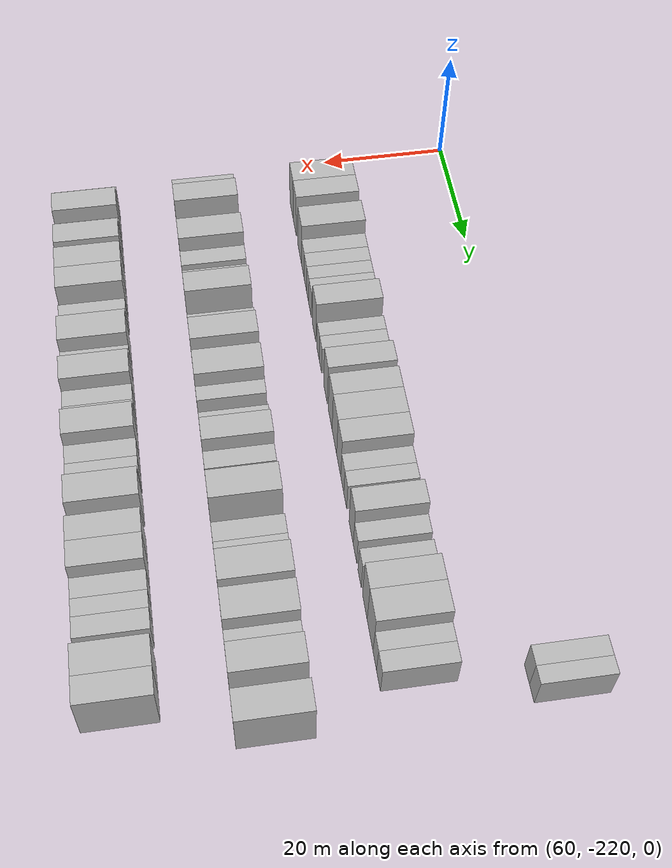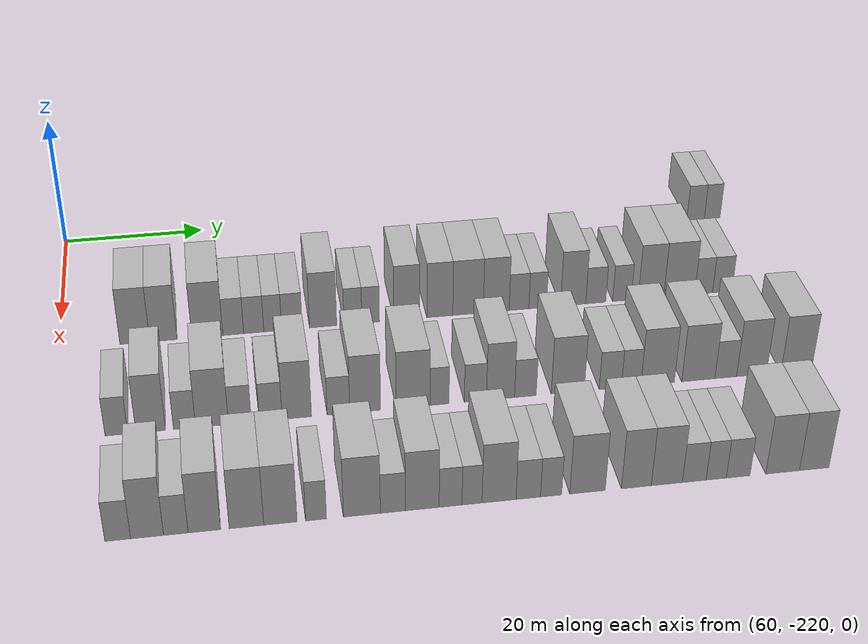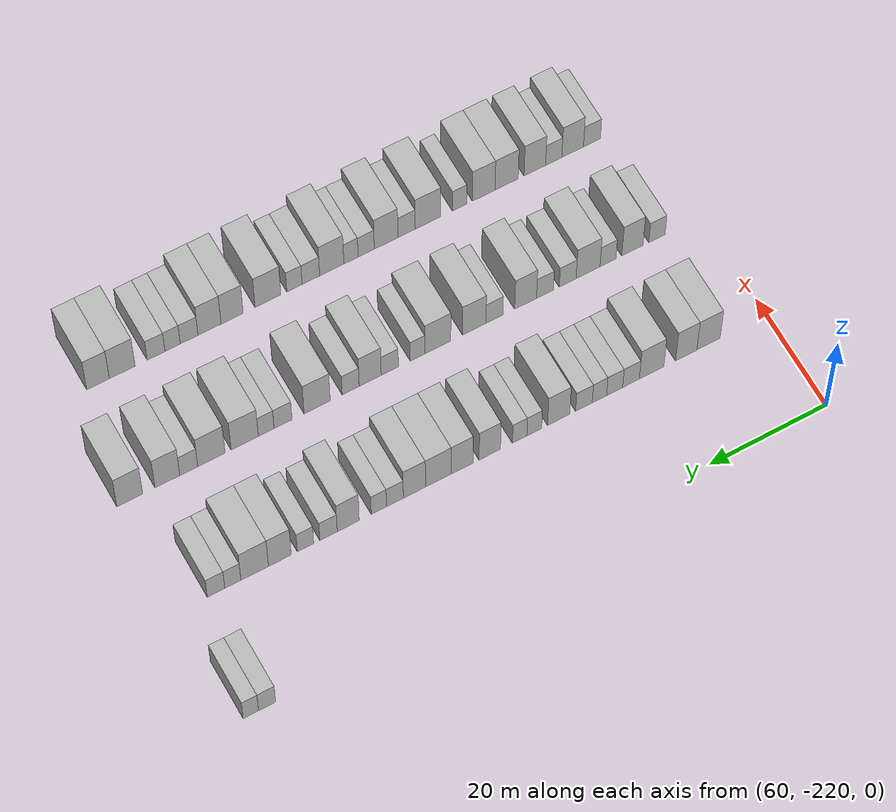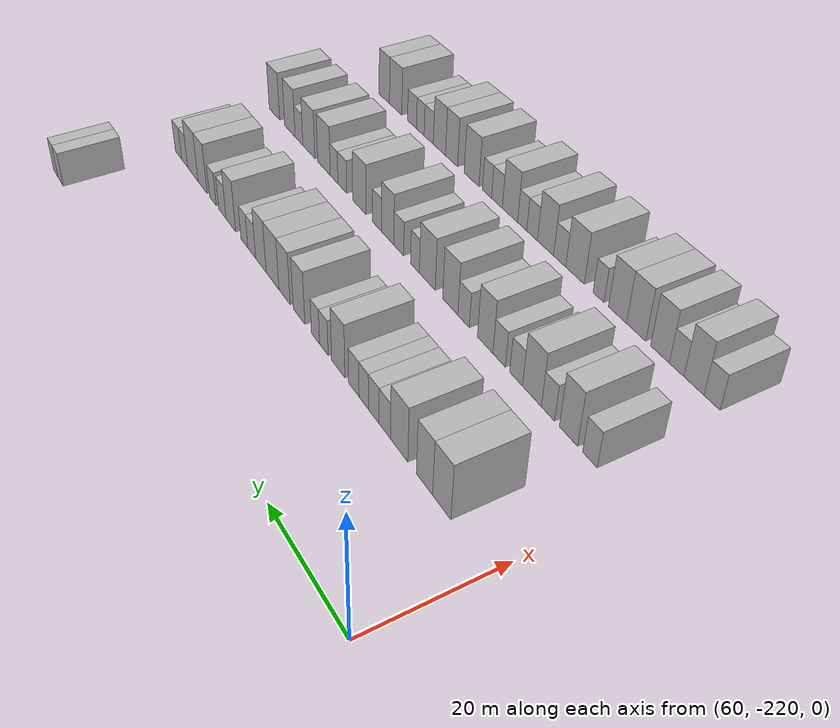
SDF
<sdf version="1.6">
 <world name="default">
  <model name="building_408">
   <static>1</static>
   <pose>63.0000 -125.8881 0 0.000000 0.000000 0.000000</pose>
   <link name="link">
    <pose>0 0 3.00 0 0 0</pose>
    <collision name="collision"><geometry><box><size>10.0000 2.7410 6.0000</size></box></geometry></collision>
    <visual name="visual">
     <cast_shadows>0</cast_shadows>
     <geometry><box><size>10.0000 2.7410 6.0000</size></box></geometry>
     <material>
      <script>
       <uri>model://HANNAS_wall/materials/scripts</uri>
       <uri>model://HANNAS_wall/materials/textures</uri>
       <name>vrc/HANNAS_wall</name>
      </script>
     </material>
    </visual>
   </link>
  </model>
  <model name="building_409">
   <static>1</static>
   <pose>63.0000 -123.2886 0 0.000000 0.000000 0.000000</pose>
   <link name="link">
    <pose>0 0 3.00 0 0 0</pose>
    <collision name="collision"><geometry><box><size>10.0000 2.4580 6.0000</size></box></geometry></collision>
    <visual name="visual">
     <cast_shadows>0</cast_shadows>
     <geometry><box><size>10.0000 2.4580 6.0000</size></box></geometry>
     <material>
      <script>
       <uri>model://HANNAS_wall/materials/scripts</uri>
       <uri>model://HANNAS_wall/materials/textures</uri>
       <name>vrc/HANNAS_wall</name>
      </script>
     </material>
    </visual>
   </link>
  </model>
  <model name="building_556">
   <static>1</static>
   <pose>82.0000 -209.9341 0 0.000000 0.000000 0.000000</pose>
   <link name="link">
    <pose>0 0 4.50 0 0 0</pose>
    <collision name="collision"><geometry><box><size>10.0000 3.9889 9.0000</size></box></geometry></collision>
    <visual name="visual">
     <cast_shadows>0</cast_shadows>
     <geometry><box><size>10.0000 3.9889 9.0000</size></box></geometry>
     <material>
      <script>
       <uri>model://HANNAS_wall/materials/scripts</uri>
       <uri>model://HANNAS_wall/materials/textures</uri>
       <name>vrc/HANNAS_wall</name>
      </script>
     </material>
    </visual>
   </link>
  </model>
  <model name="building_557">
   <static>1</static>
   <pose>82.0000 -206.1046 0 0.000000 0.000000 0.000000</pose>
   <link name="link">
    <pose>0 0 4.50 0 0 0</pose>
    <collision name="collision"><geometry><box><size>10.0000 3.6702 9.0000</size></box></geometry></collision>
    <visual name="visual">
     <cast_shadows>0</cast_shadows>
     <geometry><box><size>10.0000 3.6702 9.0000</size></box></geometry>
     <material>
      <script>
       <uri>model://HANNAS_wall/materials/scripts</uri>
       <uri>model://HANNAS_wall/materials/textures</uri>
       <name>vrc/HANNAS_wall</name>
      </script>
     </material>
    </visual>
   </link>
  </model>
  <model name="building_558">
   <static>1</static>
   <pose>82.0000 -200.1726 0 0.000000 0.000000 0.000000</pose>
   <link name="link">
    <pose>0 0 4.50 0 0 0</pose>
    <collision name="collision"><geometry><box><size>10.0000 4.1939 9.0000</size></box></geometry></collision>
    <visual name="visual">
     <cast_shadows>0</cast_shadows>
     <geometry><box><size>10.0000 4.1939 9.0000</size></box></geometry>
     <material>
      <script>
       <uri>model://HANNAS_wall/materials/scripts</uri>
       <uri>model://HANNAS_wall/materials/textures</uri>
       <name>vrc/HANNAS_wall</name>
      </script>
     </material>
    </visual>
   </link>
  </model>
  <model name="building_559">
   <static>1</static>
   <pose>82.0000 -196.6565 0 0.000000 0.000000 0.000000</pose>
   <link name="link">
    <pose>0 0 3.00 0 0 0</pose>
    <collision name="collision"><geometry><box><size>10.0000 2.8383 6.0000</size></box></geometry></collision>
    <visual name="visual">
     <cast_shadows>0</cast_shadows>
     <geometry><box><size>10.0000 2.8383 6.0000</size></box></geometry>
     <material>
      <script>
       <uri>model://HANNAS_wall/materials/scripts</uri>
       <uri>model://HANNAS_wall/materials/textures</uri>
       <name>vrc/HANNAS_wall</name>
      </script>
     </material>
    </visual>
   </link>
  </model>
  <model name="building_560">
   <static>1</static>
   <pose>82.0000 -193.8672 0 0.000000 0.000000 0.000000</pose>
   <link name="link">
    <pose>0 0 3.00 0 0 0</pose>
    <collision name="collision"><geometry><box><size>10.0000 2.7402 6.0000</size></box></geometry></collision>
    <visual name="visual">
     <cast_shadows>0</cast_shadows>
     <geometry><box><size>10.0000 2.7402 6.0000</size></box></geometry>
     <material>
      <script>
       <uri>model://HANNAS_wall/materials/scripts</uri>
       <uri>model://HANNAS_wall/materials/textures</uri>
       <name>vrc/HANNAS_wall</name>
      </script>
     </material>
    </visual>
   </link>
  </model>
  <model name="building_561">
   <static>1</static>
   <pose>82.0000 -191.2792 0 0.000000 0.000000 0.000000</pose>
   <link name="link">
    <pose>0 0 3.00 0 0 0</pose>
    <collision name="collision"><geometry><box><size>10.0000 2.4358 6.0000</size></box></geometry></collision>
    <visual name="visual">
     <cast_shadows>0</cast_shadows>
     <geometry><box><size>10.0000 2.4358 6.0000</size></box></geometry>
     <material>
      <script>
       <uri>model://HANNAS_wall/materials/scripts</uri>
       <uri>model://HANNAS_wall/materials/textures</uri>
       <name>vrc/HANNAS_wall</name>
      </script>
     </material>
    </visual>
   </link>
  </model>
  <model name="building_562">
   <static>1</static>
   <pose>82.0000 -188.6510 0 0.000000 0.000000 0.000000</pose>
   <link name="link">
    <pose>0 0 3.00 0 0 0</pose>
    <collision name="collision"><geometry><box><size>10.0000 2.8208 6.0000</size></box></geometry></collision>
    <visual name="visual">
     <cast_shadows>0</cast_shadows>
     <geometry><box><size>10.0000 2.8208 6.0000</size></box></geometry>
     <material>
      <script>
       <uri>model://HANNAS_wall/materials/scripts</uri>
       <uri>model://HANNAS_wall/materials/textures</uri>
       <name>vrc/HANNAS_wall</name>
      </script>
     </material>
    </visual>
   </link>
  </model>
  <model name="building_563">
   <static>1</static>
   <pose>82.0000 -184.3695 0 0.000000 0.000000 0.000000</pose>
   <link name="link">
    <pose>0 0 4.50 0 0 0</pose>
    <collision name="collision"><geometry><box><size>10.0000 3.7422 9.0000</size></box></geometry></collision>
    <visual name="visual">
     <cast_shadows>0</cast_shadows>
     <geometry><box><size>10.0000 3.7422 9.0000</size></box></geometry>
     <material>
      <script>
       <uri>model://HANNAS_wall/materials/scripts</uri>
       <uri>model://HANNAS_wall/materials/textures</uri>
       <name>vrc/HANNAS_wall</name>
      </script>
     </material>
    </visual>
   </link>
  </model>
  <model name="building_564">
   <static>1</static>
   <pose>82.0000 -180.2555 0 0.000000 0.000000 0.000000</pose>
   <link name="link">
    <pose>0 0 3.00 0 0 0</pose>
    <collision name="collision"><geometry><box><size>10.0000 2.4857 6.0000</size></box></geometry></collision>
    <visual name="visual">
     <cast_shadows>0</cast_shadows>
     <geometry><box><size>10.0000 2.4857 6.0000</size></box></geometry>
     <material>
      <script>
       <uri>model://HANNAS_wall/materials/scripts</uri>
       <uri>model://HANNAS_wall/materials/textures</uri>
       <name>vrc/HANNAS_wall</name>
      </script>
     </material>
    </visual>
   </link>
  </model>
  <model name="building_565">
   <static>1</static>
   <pose>82.0000 -177.7943 0 0.000000 0.000000 0.000000</pose>
   <link name="link">
    <pose>0 0 3.00 0 0 0</pose>
    <collision name="collision"><geometry><box><size>10.0000 2.4367 6.0000</size></box></geometry></collision>
    <visual name="visual">
     <cast_shadows>0</cast_shadows>
     <geometry><box><size>10.0000 2.4367 6.0000</size></box></geometry>
     <material>
      <script>
       <uri>model://HANNAS_wall/materials/scripts</uri>
       <uri>model://HANNAS_wall/materials/textures</uri>
       <name>vrc/HANNAS_wall</name>
      </script>
     </material>
    </visual>
   </link>
  </model>
  <model name="building_566">
   <static>1</static>
   <pose>82.0000 -172.7756 0 0.000000 0.000000 0.000000</pose>
   <link name="link">
    <pose>0 0 4.50 0 0 0</pose>
    <collision name="collision"><geometry><box><size>10.0000 3.6007 9.0000</size></box></geometry></collision>
    <visual name="visual">
     <cast_shadows>0</cast_shadows>
     <geometry><box><size>10.0000 3.6007 9.0000</size></box></geometry>
     <material>
      <script>
       <uri>model://HANNAS_wall/materials/scripts</uri>
       <uri>model://HANNAS_wall/materials/textures</uri>
       <name>vrc/HANNAS_wall</name>
      </script>
     </material>
    </visual>
   </link>
  </model>
  <model name="building_567">
   <static>1</static>
   <pose>82.0000 -168.1535 0 0.000000 0.000000 0.000000</pose>
   <link name="link">
    <pose>0 0 4.50 0 0 0</pose>
    <collision name="collision"><geometry><box><size>10.0000 3.6436 9.0000</size></box></geometry></collision>
    <visual name="visual">
     <cast_shadows>0</cast_shadows>
     <geometry><box><size>10.0000 3.6436 9.0000</size></box></geometry>
     <material>
      <script>
       <uri>model://HANNAS_wall/materials/scripts</uri>
       <uri>model://HANNAS_wall/materials/textures</uri>
       <name>vrc/HANNAS_wall</name>
      </script>
     </material>
    </visual>
   </link>
  </model>
  <model name="building_568">
   <static>1</static>
   <pose>82.0000 -164.1876 0 0.000000 0.000000 0.000000</pose>
   <link name="link">
    <pose>0 0 4.50 0 0 0</pose>
    <collision name="collision"><geometry><box><size>10.0000 4.2883 9.0000</size></box></geometry></collision>
    <visual name="visual">
     <cast_shadows>0</cast_shadows>
     <geometry><box><size>10.0000 4.2883 9.0000</size></box></geometry>
     <material>
      <script>
       <uri>model://HANNAS_wall/materials/scripts</uri>
       <uri>model://HANNAS_wall/materials/textures</uri>
       <name>vrc/HANNAS_wall</name>
      </script>
     </material>
    </visual>
   </link>
  </model>
  <model name="building_569">
   <static>1</static>
   <pose>82.0000 -160.2117 0 0.000000 0.000000 0.000000</pose>
   <link name="link">
    <pose>0 0 4.50 0 0 0</pose>
    <collision name="collision"><geometry><box><size>10.0000 3.6635 9.0000</size></box></geometry></collision>
    <visual name="visual">
     <cast_shadows>0</cast_shadows>
     <geometry><box><size>10.0000 3.6635 9.0000</size></box></geometry>
     <material>
      <script>
       <uri>model://HANNAS_wall/materials/scripts</uri>
       <uri>model://HANNAS_wall/materials/textures</uri>
       <name>vrc/HANNAS_wall</name>
      </script>
     </material>
    </visual>
   </link>
  </model>
  <model name="building_570">
   <static>1</static>
   <pose>82.0000 -156.9840 0 0.000000 0.000000 0.000000</pose>
   <link name="link">
    <pose>0 0 3.00 0 0 0</pose>
    <collision name="collision"><geometry><box><size>10.0000 2.7917 6.0000</size></box></geometry></collision>
    <visual name="visual">
     <cast_shadows>0</cast_shadows>
     <geometry><box><size>10.0000 2.7917 6.0000</size></box></geometry>
     <material>
      <script>
       <uri>model://HANNAS_wall/materials/scripts</uri>
       <uri>model://HANNAS_wall/materials/textures</uri>
       <name>vrc/HANNAS_wall</name>
      </script>
     </material>
    </visual>
   </link>
  </model>
  <model name="building_571">
   <static>1</static>
   <pose>82.0000 -154.3357 0 0.000000 0.000000 0.000000</pose>
   <link name="link">
    <pose>0 0 3.00 0 0 0</pose>
    <collision name="collision"><geometry><box><size>10.0000 2.5050 6.0000</size></box></geometry></collision>
    <visual name="visual">
     <cast_shadows>0</cast_shadows>
     <geometry><box><size>10.0000 2.5050 6.0000</size></box></geometry>
     <material>
      <script>
       <uri>model://HANNAS_wall/materials/scripts</uri>
       <uri>model://HANNAS_wall/materials/textures</uri>
       <name>vrc/HANNAS_wall</name>
      </script>
     </material>
    </visual>
   </link>
  </model>
  <model name="building_572">
   <static>1</static>
   <pose>82.0000 -149.2749 0 0.000000 0.000000 0.000000</pose>
   <link name="link">
    <pose>0 0 4.50 0 0 0</pose>
    <collision name="collision"><geometry><box><size>10.0000 3.6166 9.0000</size></box></geometry></collision>
    <visual name="visual">
     <cast_shadows>0</cast_shadows>
     <geometry><box><size>10.0000 3.6166 9.0000</size></box></geometry>
     <material>
      <script>
       <uri>model://HANNAS_wall/materials/scripts</uri>
       <uri>model://HANNAS_wall/materials/textures</uri>
       <name>vrc/HANNAS_wall</name>
      </script>
     </material>
    </visual>
   </link>
  </model>
  <model name="building_573">
   <static>1</static>
   <pose>82.0000 -146.0316 0 0.000000 0.000000 0.000000</pose>
   <link name="link">
    <pose>0 0 3.00 0 0 0</pose>
    <collision name="collision"><geometry><box><size>10.0000 2.8700 6.0000</size></box></geometry></collision>
    <visual name="visual">
     <cast_shadows>0</cast_shadows>
     <geometry><box><size>10.0000 2.8700 6.0000</size></box></geometry>
     <material>
      <script>
       <uri>model://HANNAS_wall/materials/scripts</uri>
       <uri>model://HANNAS_wall/materials/textures</uri>
       <name>vrc/HANNAS_wall</name>
      </script>
     </material>
    </visual>
   </link>
  </model>
  <model name="building_574">
   <static>1</static>
   <pose>82.0000 -142.2575 0 0.000000 0.000000 0.000000</pose>
   <link name="link">
    <pose>0 0 3.00 0 0 0</pose>
    <collision name="collision"><geometry><box><size>10.0000 2.6781 6.0000</size></box></geometry></collision>
    <visual name="visual">
     <cast_shadows>0</cast_shadows>
     <geometry><box><size>10.0000 2.6781 6.0000</size></box></geometry>
     <material>
      <script>
       <uri>model://HANNAS_wall/materials/scripts</uri>
       <uri>model://HANNAS_wall/materials/textures</uri>
       <name>vrc/HANNAS_wall</name>
      </script>
     </material>
    </visual>
   </link>
  </model>
  <model name="building_575">
   <static>1</static>
   <pose>82.0000 -138.0590 0 0.000000 0.000000 0.000000</pose>
   <link name="link">
    <pose>0 0 4.50 0 0 0</pose>
    <collision name="collision"><geometry><box><size>10.0000 3.7189 9.0000</size></box></geometry></collision>
    <visual name="visual">
     <cast_shadows>0</cast_shadows>
     <geometry><box><size>10.0000 3.7189 9.0000</size></box></geometry>
     <material>
      <script>
       <uri>model://HANNAS_wall/materials/scripts</uri>
       <uri>model://HANNAS_wall/materials/textures</uri>
       <name>vrc/HANNAS_wall</name>
      </script>
     </material>
    </visual>
   </link>
  </model>
  <model name="building_576">
   <static>1</static>
   <pose>82.0000 -133.9560 0 0.000000 0.000000 0.000000</pose>
   <link name="link">
    <pose>0 0 4.50 0 0 0</pose>
    <collision name="collision"><geometry><box><size>10.0000 4.4872 9.0000</size></box></geometry></collision>
    <visual name="visual">
     <cast_shadows>0</cast_shadows>
     <geometry><box><size>10.0000 4.4872 9.0000</size></box></geometry>
     <material>
      <script>
       <uri>model://HANNAS_wall/materials/scripts</uri>
       <uri>model://HANNAS_wall/materials/textures</uri>
       <name>vrc/HANNAS_wall</name>
      </script>
     </material>
    </visual>
   </link>
  </model>
  <model name="building_577">
   <static>1</static>
   <pose>82.0000 -130.4039 0 0.000000 0.000000 0.000000</pose>
   <link name="link">
    <pose>0 0 3.00 0 0 0</pose>
    <collision name="collision"><geometry><box><size>10.0000 2.6171 6.0000</size></box></geometry></collision>
    <visual name="visual">
     <cast_shadows>0</cast_shadows>
     <geometry><box><size>10.0000 2.6171 6.0000</size></box></geometry>
     <material>
      <script>
       <uri>model://HANNAS_wall/materials/scripts</uri>
       <uri>model://HANNAS_wall/materials/textures</uri>
       <name>vrc/HANNAS_wall</name>
      </script>
     </material>
    </visual>
   </link>
  </model>
  <model name="building_578">
   <static>1</static>
   <pose>82.0000 -127.6785 0 0.000000 0.000000 0.000000</pose>
   <link name="link">
    <pose>0 0 3.00 0 0 0</pose>
    <collision name="collision"><geometry><box><size>10.0000 2.8337 6.0000</size></box></geometry></collision>
    <visual name="visual">
     <cast_shadows>0</cast_shadows>
     <geometry><box><size>10.0000 2.8337 6.0000</size></box></geometry>
     <material>
      <script>
       <uri>model://HANNAS_wall/materials/scripts</uri>
       <uri>model://HANNAS_wall/materials/textures</uri>
       <name>vrc/HANNAS_wall</name>
      </script>
     </material>
    </visual>
   </link>
  </model>
  <model name="building_731">
   <static>1</static>
   <pose>101.0000 -212.2481 0 0.000000 0.000000 0.000000</pose>
   <link name="link">
    <pose>0 0 3.00 0 0 0</pose>
    <collision name="collision"><geometry><box><size>10.0000 2.8346 6.0000</size></box></geometry></collision>
    <visual name="visual">
     <cast_shadows>0</cast_shadows>
     <geometry><box><size>10.0000 2.8346 6.0000</size></box></geometry>
     <material>
      <script>
       <uri>model://HANNAS_wall/materials/scripts</uri>
       <uri>model://HANNAS_wall/materials/textures</uri>
       <name>vrc/HANNAS_wall</name>
      </script>
     </material>
    </visual>
   </link>
  </model>
  <model name="building_732">
   <static>1</static>
   <pose>101.0000 -207.9879 0 0.000000 0.000000 0.000000</pose>
   <link name="link">
    <pose>0 0 4.50 0 0 0</pose>
    <collision name="collision"><geometry><box><size>10.0000 3.6858 9.0000</size></box></geometry></collision>
    <visual name="visual">
     <cast_shadows>0</cast_shadows>
     <geometry><box><size>10.0000 3.6858 9.0000</size></box></geometry>
     <material>
      <script>
       <uri>model://HANNAS_wall/materials/scripts</uri>
       <uri>model://HANNAS_wall/materials/textures</uri>
       <name>vrc/HANNAS_wall</name>
      </script>
     </material>
    </visual>
   </link>
  </model>
  <model name="building_733">
   <static>1</static>
   <pose>101.0000 -203.7657 0 0.000000 0.000000 0.000000</pose>
   <link name="link">
    <pose>0 0 3.00 0 0 0</pose>
    <collision name="collision"><geometry><box><size>10.0000 2.7587 6.0000</size></box></geometry></collision>
    <visual name="visual">
     <cast_shadows>0</cast_shadows>
     <geometry><box><size>10.0000 2.7587 6.0000</size></box></geometry>
     <material>
      <script>
       <uri>model://HANNAS_wall/materials/scripts</uri>
       <uri>model://HANNAS_wall/materials/textures</uri>
       <name>vrc/HANNAS_wall</name>
      </script>
     </material>
    </visual>
   </link>
  </model>
  <model name="building_734">
   <static>1</static>
   <pose>101.0000 -200.3200 0 0.000000 0.000000 0.000000</pose>
   <link name="link">
    <pose>0 0 4.50 0 0 0</pose>
    <collision name="collision"><geometry><box><size>10.0000 4.1327 9.0000</size></box></geometry></collision>
    <visual name="visual">
     <cast_shadows>0</cast_shadows>
     <geometry><box><size>10.0000 4.1327 9.0000</size></box></geometry>
     <material>
      <script>
       <uri>model://HANNAS_wall/materials/scripts</uri>
       <uri>model://HANNAS_wall/materials/textures</uri>
       <name>vrc/HANNAS_wall</name>
      </script>
     </material>
    </visual>
   </link>
  </model>
  <model name="building_735">
   <static>1</static>
   <pose>101.0000 -196.8063 0 0.000000 0.000000 0.000000</pose>
   <link name="link">
    <pose>0 0 3.00 0 0 0</pose>
    <collision name="collision"><geometry><box><size>10.0000 2.8948 6.0000</size></box></geometry></collision>
    <visual name="visual">
     <cast_shadows>0</cast_shadows>
     <geometry><box><size>10.0000 2.8948 6.0000</size></box></geometry>
     <material>
      <script>
       <uri>model://HANNAS_wall/materials/scripts</uri>
       <uri>model://HANNAS_wall/materials/textures</uri>
       <name>vrc/HANNAS_wall</name>
      </script>
     </material>
    </visual>
   </link>
  </model>
  <model name="building_736">
   <static>1</static>
   <pose>101.0000 -192.9142 0 0.000000 0.000000 0.000000</pose>
   <link name="link">
    <pose>0 0 3.00 0 0 0</pose>
    <collision name="collision"><geometry><box><size>10.0000 2.8894 6.0000</size></box></geometry></collision>
    <visual name="visual">
     <cast_shadows>0</cast_shadows>
     <geometry><box><size>10.0000 2.8894 6.0000</size></box></geometry>
     <material>
      <script>
       <uri>model://HANNAS_wall/materials/scripts</uri>
       <uri>model://HANNAS_wall/materials/textures</uri>
       <name>vrc/HANNAS_wall</name>
      </script>
     </material>
    </visual>
   </link>
  </model>
  <model name="building_737">
   <static>1</static>
   <pose>101.0000 -189.5976 0 0.000000 0.000000 0.000000</pose>
   <link name="link">
    <pose>0 0 4.50 0 0 0</pose>
    <collision name="collision"><geometry><box><size>10.0000 3.7437 9.0000</size></box></geometry></collision>
    <visual name="visual">
     <cast_shadows>0</cast_shadows>
     <geometry><box><size>10.0000 3.7437 9.0000</size></box></geometry>
     <material>
      <script>
       <uri>model://HANNAS_wall/materials/scripts</uri>
       <uri>model://HANNAS_wall/materials/textures</uri>
       <name>vrc/HANNAS_wall</name>
      </script>
     </material>
    </visual>
   </link>
  </model>
  <model name="building_738">
   <static>1</static>
   <pose>101.0000 -184.2768 0 0.000000 0.000000 0.000000</pose>
   <link name="link">
    <pose>0 0 3.00 0 0 0</pose>
    <collision name="collision"><geometry><box><size>10.0000 2.8981 6.0000</size></box></geometry></collision>
    <visual name="visual">
     <cast_shadows>0</cast_shadows>
     <geometry><box><size>10.0000 2.8981 6.0000</size></box></geometry>
     <material>
      <script>
       <uri>model://HANNAS_wall/materials/scripts</uri>
       <uri>model://HANNAS_wall/materials/textures</uri>
       <name>vrc/HANNAS_wall</name>
      </script>
     </material>
    </visual>
   </link>
  </model>
  <model name="building_739">
   <static>1</static>
   <pose>101.0000 -180.8423 0 0.000000 0.000000 0.000000</pose>
   <link name="link">
    <pose>0 0 4.50 0 0 0</pose>
    <collision name="collision"><geometry><box><size>10.0000 3.9709 9.0000</size></box></geometry></collision>
    <visual name="visual">
     <cast_shadows>0</cast_shadows>
     <geometry><box><size>10.0000 3.9709 9.0000</size></box></geometry>
     <material>
      <script>
       <uri>model://HANNAS_wall/materials/scripts</uri>
       <uri>model://HANNAS_wall/materials/textures</uri>
       <name>vrc/HANNAS_wall</name>
      </script>
     </material>
    </visual>
   </link>
  </model>
  <model name="building_740">
   <static>1</static>
   <pose>101.0000 -174.6689 0 0.000000 0.000000 0.000000</pose>
   <link name="link">
    <pose>0 0 4.50 0 0 0</pose>
    <collision name="collision"><geometry><box><size>10.0000 4.3758 9.0000</size></box></geometry></collision>
    <visual name="visual">
     <cast_shadows>0</cast_shadows>
     <geometry><box><size>10.0000 4.3758 9.0000</size></box></geometry>
     <material>
      <script>
       <uri>model://HANNAS_wall/materials/scripts</uri>
       <uri>model://HANNAS_wall/materials/textures</uri>
       <name>vrc/HANNAS_wall</name>
      </script>
     </material>
    </visual>
   </link>
  </model>
  <model name="building_741">
   <static>1</static>
   <pose>101.0000 -171.2430 0 0.000000 0.000000 0.000000</pose>
   <link name="link">
    <pose>0 0 3.00 0 0 0</pose>
    <collision name="collision"><geometry><box><size>10.0000 2.4761 6.0000</size></box></geometry></collision>
    <visual name="visual">
     <cast_shadows>0</cast_shadows>
     <geometry><box><size>10.0000 2.4761 6.0000</size></box></geometry>
     <material>
      <script>
       <uri>model://HANNAS_wall/materials/scripts</uri>
       <uri>model://HANNAS_wall/materials/textures</uri>
       <name>vrc/HANNAS_wall</name>
      </script>
     </material>
    </visual>
   </link>
  </model>
  <model name="building_742">
   <static>1</static>
   <pose>101.0000 -166.5617 0 0.000000 0.000000 0.000000</pose>
   <link name="link">
    <pose>0 0 3.00 0 0 0</pose>
    <collision name="collision"><geometry><box><size>10.0000 2.8865 6.0000</size></box></geometry></collision>
    <visual name="visual">
     <cast_shadows>0</cast_shadows>
     <geometry><box><size>10.0000 2.8865 6.0000</size></box></geometry>
     <material>
      <script>
       <uri>model://HANNAS_wall/materials/scripts</uri>
       <uri>model://HANNAS_wall/materials/textures</uri>
       <name>vrc/HANNAS_wall</name>
      </script>
     </material>
    </visual>
   </link>
  </model>
  <model name="building_743">
   <static>1</static>
   <pose>101.0000 -163.2691 0 0.000000 0.000000 0.000000</pose>
   <link name="link">
    <pose>0 0 4.50 0 0 0</pose>
    <collision name="collision"><geometry><box><size>10.0000 3.6987 9.0000</size></box></geometry></collision>
    <visual name="visual">
     <cast_shadows>0</cast_shadows>
     <geometry><box><size>10.0000 3.6987 9.0000</size></box></geometry>
     <material>
      <script>
       <uri>model://HANNAS_wall/materials/scripts</uri>
       <uri>model://HANNAS_wall/materials/textures</uri>
       <name>vrc/HANNAS_wall</name>
      </script>
     </material>
    </visual>
   </link>
  </model>
  <model name="building_744">
   <static>1</static>
   <pose>101.0000 -159.9936 0 0.000000 0.000000 0.000000</pose>
   <link name="link">
    <pose>0 0 3.00 0 0 0</pose>
    <collision name="collision"><geometry><box><size>10.0000 2.8523 6.0000</size></box></geometry></collision>
    <visual name="visual">
     <cast_shadows>0</cast_shadows>
     <geometry><box><size>10.0000 2.8523 6.0000</size></box></geometry>
     <material>
      <script>
       <uri>model://HANNAS_wall/materials/scripts</uri>
       <uri>model://HANNAS_wall/materials/textures</uri>
       <name>vrc/HANNAS_wall</name>
      </script>
     </material>
    </visual>
   </link>
  </model>
  <model name="building_745">
   <static>1</static>
   <pose>101.0000 -154.3851 0 0.000000 0.000000 0.000000</pose>
   <link name="link">
    <pose>0 0 4.50 0 0 0</pose>
    <collision name="collision"><geometry><box><size>10.0000 4.3646 9.0000</size></box></geometry></collision>
    <visual name="visual">
     <cast_shadows>0</cast_shadows>
     <geometry><box><size>10.0000 4.3646 9.0000</size></box></geometry>
     <material>
      <script>
       <uri>model://HANNAS_wall/materials/scripts</uri>
       <uri>model://HANNAS_wall/materials/textures</uri>
       <name>vrc/HANNAS_wall</name>
      </script>
     </material>
    </visual>
   </link>
  </model>
  <model name="building_746">
   <static>1</static>
   <pose>101.0000 -148.7161 0 0.000000 0.000000 0.000000</pose>
   <link name="link">
    <pose>0 0 3.00 0 0 0</pose>
    <collision name="collision"><geometry><box><size>10.0000 2.9734 6.0000</size></box></geometry></collision>
    <visual name="visual">
     <cast_shadows>0</cast_shadows>
     <geometry><box><size>10.0000 2.9734 6.0000</size></box></geometry>
     <material>
      <script>
       <uri>model://HANNAS_wall/materials/scripts</uri>
       <uri>model://HANNAS_wall/materials/textures</uri>
       <name>vrc/HANNAS_wall</name>
      </script>
     </material>
    </visual>
   </link>
  </model>
  <model name="building_747">
   <static>1</static>
   <pose>101.0000 -145.9267 0 0.000000 0.000000 0.000000</pose>
   <link name="link">
    <pose>0 0 3.00 0 0 0</pose>
    <collision name="collision"><geometry><box><size>10.0000 2.6053 6.0000</size></box></geometry></collision>
    <visual name="visual">
     <cast_shadows>0</cast_shadows>
     <geometry><box><size>10.0000 2.6053 6.0000</size></box></geometry>
     <material>
      <script>
       <uri>model://HANNAS_wall/materials/scripts</uri>
       <uri>model://HANNAS_wall/materials/textures</uri>
       <name>vrc/HANNAS_wall</name>
      </script>
     </material>
    </visual>
   </link>
  </model>
  <model name="building_748">
   <static>1</static>
   <pose>101.0000 -142.3750 0 0.000000 0.000000 0.000000</pose>
   <link name="link">
    <pose>0 0 4.50 0 0 0</pose>
    <collision name="collision"><geometry><box><size>10.0000 4.4983 9.0000</size></box></geometry></collision>
    <visual name="visual">
     <cast_shadows>0</cast_shadows>
     <geometry><box><size>10.0000 4.4983 9.0000</size></box></geometry>
     <material>
      <script>
       <uri>model://HANNAS_wall/materials/scripts</uri>
       <uri>model://HANNAS_wall/materials/textures</uri>
       <name>vrc/HANNAS_wall</name>
      </script>
     </material>
    </visual>
   </link>
  </model>
  <model name="building_749">
   <static>1</static>
   <pose>101.0000 -136.8778 0 0.000000 0.000000 0.000000</pose>
   <link name="link">
    <pose>0 0 4.50 0 0 0</pose>
    <collision name="collision"><geometry><box><size>10.0000 4.4959 9.0000</size></box></geometry></collision>
    <visual name="visual">
     <cast_shadows>0</cast_shadows>
     <geometry><box><size>10.0000 4.4959 9.0000</size></box></geometry>
     <material>
      <script>
       <uri>model://HANNAS_wall/materials/scripts</uri>
       <uri>model://HANNAS_wall/materials/textures</uri>
       <name>vrc/HANNAS_wall</name>
      </script>
     </material>
    </visual>
   </link>
  </model>
  <model name="building_750">
   <static>1</static>
   <pose>101.0000 -133.1557 0 0.000000 0.000000 0.000000</pose>
   <link name="link">
    <pose>0 0 3.00 0 0 0</pose>
    <collision name="collision"><geometry><box><size>10.0000 2.9482 6.0000</size></box></geometry></collision>
    <visual name="visual">
     <cast_shadows>0</cast_shadows>
     <geometry><box><size>10.0000 2.9482 6.0000</size></box></geometry>
     <material>
      <script>
       <uri>model://HANNAS_wall/materials/scripts</uri>
       <uri>model://HANNAS_wall/materials/textures</uri>
       <name>vrc/HANNAS_wall</name>
      </script>
     </material>
    </visual>
   </link>
  </model>
  <model name="building_751">
   <static>1</static>
   <pose>101.0000 -129.6438 0 0.000000 0.000000 0.000000</pose>
   <link name="link">
    <pose>0 0 4.50 0 0 0</pose>
    <collision name="collision"><geometry><box><size>10.0000 4.0757 9.0000</size></box></geometry></collision>
    <visual name="visual">
     <cast_shadows>0</cast_shadows>
     <geometry><box><size>10.0000 4.0757 9.0000</size></box></geometry>
     <material>
      <script>
       <uri>model://HANNAS_wall/materials/scripts</uri>
       <uri>model://HANNAS_wall/materials/textures</uri>
       <name>vrc/HANNAS_wall</name>
      </script>
     </material>
    </visual>
   </link>
  </model>
  <model name="building_752">
   <static>1</static>
   <pose>101.0000 -123.4996 0 0.000000 0.000000 0.000000</pose>
   <link name="link">
    <pose>0 0 4.50 0 0 0</pose>
    <collision name="collision"><geometry><box><size>10.0000 4.2126 9.0000</size></box></geometry></collision>
    <visual name="visual">
     <cast_shadows>0</cast_shadows>
     <geometry><box><size>10.0000 4.2126 9.0000</size></box></geometry>
     <material>
      <script>
       <uri>model://HANNAS_wall/materials/scripts</uri>
       <uri>model://HANNAS_wall/materials/textures</uri>
       <name>vrc/HANNAS_wall</name>
      </script>
     </material>
    </visual>
   </link>
  </model>
  <model name="building_914">
   <static>1</static>
   <pose>120.0000 -211.9643 0 0.000000 0.000000 0.000000</pose>
   <link name="link">
    <pose>0 0 3.00 0 0 0</pose>
    <collision name="collision"><geometry><box><size>10.0000 2.9546 6.0000</size></box></geometry></collision>
    <visual name="visual">
     <cast_shadows>0</cast_shadows>
     <geometry><box><size>10.0000 2.9546 6.0000</size></box></geometry>
     <material>
      <script>
       <uri>model://HANNAS_wall/materials/scripts</uri>
       <uri>model://HANNAS_wall/materials/textures</uri>
       <name>vrc/HANNAS_wall</name>
      </script>
     </material>
    </visual>
   </link>
  </model>
  <model name="building_915">
   <static>1</static>
   <pose>120.0000 -208.5972 0 0.000000 0.000000 0.000000</pose>
   <link name="link">
    <pose>0 0 4.50 0 0 0</pose>
    <collision name="collision"><geometry><box><size>10.0000 3.7796 9.0000</size></box></geometry></collision>
    <visual name="visual">
     <cast_shadows>0</cast_shadows>
     <geometry><box><size>10.0000 3.7796 9.0000</size></box></geometry>
     <material>
      <script>
       <uri>model://HANNAS_wall/materials/scripts</uri>
       <uri>model://HANNAS_wall/materials/textures</uri>
       <name>vrc/HANNAS_wall</name>
      </script>
     </material>
    </visual>
   </link>
  </model>
  <model name="building_916">
   <static>1</static>
   <pose>120.0000 -205.2905 0 0.000000 0.000000 0.000000</pose>
   <link name="link">
    <pose>0 0 3.00 0 0 0</pose>
    <collision name="collision"><geometry><box><size>10.0000 2.8339 6.0000</size></box></geometry></collision>
    <visual name="visual">
     <cast_shadows>0</cast_shadows>
     <geometry><box><size>10.0000 2.8339 6.0000</size></box></geometry>
     <material>
      <script>
       <uri>model://HANNAS_wall/materials/scripts</uri>
       <uri>model://HANNAS_wall/materials/textures</uri>
       <name>vrc/HANNAS_wall</name>
      </script>
     </material>
    </visual>
   </link>
  </model>
  <model name="building_917">
   <static>1</static>
   <pose>120.0000 -201.9947 0 0.000000 0.000000 0.000000</pose>
   <link name="link">
    <pose>0 0 4.50 0 0 0</pose>
    <collision name="collision"><geometry><box><size>10.0000 3.7577 9.0000</size></box></geometry></collision>
    <visual name="visual">
     <cast_shadows>0</cast_shadows>
     <geometry><box><size>10.0000 3.7577 9.0000</size></box></geometry>
     <material>
      <script>
       <uri>model://HANNAS_wall/materials/scripts</uri>
       <uri>model://HANNAS_wall/materials/textures</uri>
       <name>vrc/HANNAS_wall</name>
      </script>
     </material>
    </visual>
   </link>
  </model>
  <model name="building_918">
   <static>1</static>
   <pose>120.0000 -197.1023 0 0.000000 0.000000 0.000000</pose>
   <link name="link">
    <pose>0 0 4.50 0 0 0</pose>
    <collision name="collision"><geometry><box><size>10.0000 4.0272 9.0000</size></box></geometry></collision>
    <visual name="visual">
     <cast_shadows>0</cast_shadows>
     <geometry><box><size>10.0000 4.0272 9.0000</size></box></geometry>
     <material>
      <script>
       <uri>model://HANNAS_wall/materials/scripts</uri>
       <uri>model://HANNAS_wall/materials/textures</uri>
       <name>vrc/HANNAS_wall</name>
      </script>
     </material>
    </visual>
   </link>
  </model>
  <model name="building_919">
   <static>1</static>
   <pose>120.0000 -193.1354 0 0.000000 0.000000 0.000000</pose>
   <link name="link">
    <pose>0 0 4.50 0 0 0</pose>
    <collision name="collision"><geometry><box><size>10.0000 3.9066 9.0000</size></box></geometry></collision>
    <visual name="visual">
     <cast_shadows>0</cast_shadows>
     <geometry><box><size>10.0000 3.9066 9.0000</size></box></geometry>
     <material>
      <script>
       <uri>model://HANNAS_wall/materials/scripts</uri>
       <uri>model://HANNAS_wall/materials/textures</uri>
       <name>vrc/HANNAS_wall</name>
      </script>
     </material>
    </visual>
   </link>
  </model>
  <model name="building_920">
   <static>1</static>
   <pose>120.0000 -188.9549 0 0.000000 0.000000 0.000000</pose>
   <link name="link">
    <pose>0 0 3.00 0 0 0</pose>
    <collision name="collision"><geometry><box><size>10.0000 2.4544 6.0000</size></box></geometry></collision>
    <visual name="visual">
     <cast_shadows>0</cast_shadows>
     <geometry><box><size>10.0000 2.4544 6.0000</size></box></geometry>
     <material>
      <script>
       <uri>model://HANNAS_wall/materials/scripts</uri>
       <uri>model://HANNAS_wall/materials/textures</uri>
       <name>vrc/HANNAS_wall</name>
      </script>
     </material>
    </visual>
   </link>
  </model>
  <model name="building_921">
   <static>1</static>
   <pose>120.0000 -183.5377 0 0.000000 0.000000 0.000000</pose>
   <link name="link">
    <pose>0 0 4.50 0 0 0</pose>
    <collision name="collision"><geometry><box><size>10.0000 4.3800 9.0000</size></box></geometry></collision>
    <visual name="visual">
     <cast_shadows>0</cast_shadows>
     <geometry><box><size>10.0000 4.3800 9.0000</size></box></geometry>
     <material>
      <script>
       <uri>model://HANNAS_wall/materials/scripts</uri>
       <uri>model://HANNAS_wall/materials/textures</uri>
       <name>vrc/HANNAS_wall</name>
      </script>
     </material>
    </visual>
   </link>
  </model>
  <model name="building_922">
   <static>1</static>
   <pose>120.0000 -179.8608 0 0.000000 0.000000 0.000000</pose>
   <link name="link">
    <pose>0 0 3.00 0 0 0</pose>
    <collision name="collision"><geometry><box><size>10.0000 2.9737 6.0000</size></box></geometry></collision>
    <visual name="visual">
     <cast_shadows>0</cast_shadows>
     <geometry><box><size>10.0000 2.9737 6.0000</size></box></geometry>
     <material>
      <script>
       <uri>model://HANNAS_wall/materials/scripts</uri>
       <uri>model://HANNAS_wall/materials/textures</uri>
       <name>vrc/HANNAS_wall</name>
      </script>
     </material>
    </visual>
   </link>
  </model>
  <model name="building_923">
   <static>1</static>
   <pose>120.0000 -176.3505 0 0.000000 0.000000 0.000000</pose>
   <link name="link">
    <pose>0 0 4.50 0 0 0</pose>
    <collision name="collision"><geometry><box><size>10.0000 4.0469 9.0000</size></box></geometry></collision>
    <visual name="visual">
     <cast_shadows>0</cast_shadows>
     <geometry><box><size>10.0000 4.0469 9.0000</size></box></geometry>
     <material>
      <script>
       <uri>model://HANNAS_wall/materials/scripts</uri>
       <uri>model://HANNAS_wall/materials/textures</uri>
       <name>vrc/HANNAS_wall</name>
      </script>
     </material>
    </visual>
   </link>
  </model>
  <model name="building_924">
   <static>1</static>
   <pose>120.0000 -172.9522 0 0.000000 0.000000 0.000000</pose>
   <link name="link">
    <pose>0 0 3.00 0 0 0</pose>
    <collision name="collision"><geometry><box><size>10.0000 2.7496 6.0000</size></box></geometry></collision>
    <visual name="visual">
     <cast_shadows>0</cast_shadows>
     <geometry><box><size>10.0000 2.7496 6.0000</size></box></geometry>
     <material>
      <script>
       <uri>model://HANNAS_wall/materials/scripts</uri>
       <uri>model://HANNAS_wall/materials/textures</uri>
       <name>vrc/HANNAS_wall</name>
      </script>
     </material>
    </visual>
   </link>
  </model>
  <model name="building_925">
   <static>1</static>
   <pose>120.0000 -170.3677 0 0.000000 0.000000 0.000000</pose>
   <link name="link">
    <pose>0 0 3.00 0 0 0</pose>
    <collision name="collision"><geometry><box><size>10.0000 2.4193 6.0000</size></box></geometry></collision>
    <visual name="visual">
     <cast_shadows>0</cast_shadows>
     <geometry><box><size>10.0000 2.4193 6.0000</size></box></geometry>
     <material>
      <script>
       <uri>model://HANNAS_wall/materials/scripts</uri>
       <uri>model://HANNAS_wall/materials/textures</uri>
       <name>vrc/HANNAS_wall</name>
      </script>
     </material>
    </visual>
   </link>
  </model>
  <model name="building_926">
   <static>1</static>
   <pose>120.0000 -167.1000 0 0.000000 0.000000 0.000000</pose>
   <link name="link">
    <pose>0 0 4.50 0 0 0</pose>
    <collision name="collision"><geometry><box><size>10.0000 4.1162 9.0000</size></box></geometry></collision>
    <visual name="visual">
     <cast_shadows>0</cast_shadows>
     <geometry><box><size>10.0000 4.1162 9.0000</size></box></geometry>
     <material>
      <script>
       <uri>model://HANNAS_wall/materials/scripts</uri>
       <uri>model://HANNAS_wall/materials/textures</uri>
       <name>vrc/HANNAS_wall</name>
      </script>
     </material>
    </visual>
   </link>
  </model>
  <model name="building_927">
   <static>1</static>
   <pose>120.0000 -163.5475 0 0.000000 0.000000 0.000000</pose>
   <link name="link">
    <pose>0 0 3.00 0 0 0</pose>
    <collision name="collision"><geometry><box><size>10.0000 2.9888 6.0000</size></box></geometry></collision>
    <visual name="visual">
     <cast_shadows>0</cast_shadows>
     <geometry><box><size>10.0000 2.9888 6.0000</size></box></geometry>
     <material>
      <script>
       <uri>model://HANNAS_wall/materials/scripts</uri>
       <uri>model://HANNAS_wall/materials/textures</uri>
       <name>vrc/HANNAS_wall</name>
      </script>
     </material>
    </visual>
   </link>
  </model>
  <model name="building_928">
   <static>1</static>
   <pose>120.0000 -160.7680 0 0.000000 0.000000 0.000000</pose>
   <link name="link">
    <pose>0 0 3.00 0 0 0</pose>
    <collision name="collision"><geometry><box><size>10.0000 2.5703 6.0000</size></box></geometry></collision>
    <visual name="visual">
     <cast_shadows>0</cast_shadows>
     <geometry><box><size>10.0000 2.5703 6.0000</size></box></geometry>
     <material>
      <script>
       <uri>model://HANNAS_wall/materials/scripts</uri>
       <uri>model://HANNAS_wall/materials/textures</uri>
       <name>vrc/HANNAS_wall</name>
      </script>
     </material>
    </visual>
   </link>
  </model>
  <model name="building_929">
   <static>1</static>
   <pose>120.0000 -156.3075 0 0.000000 0.000000 0.000000</pose>
   <link name="link">
    <pose>0 0 4.50 0 0 0</pose>
    <collision name="collision"><geometry><box><size>10.0000 4.3507 9.0000</size></box></geometry></collision>
    <visual name="visual">
     <cast_shadows>0</cast_shadows>
     <geometry><box><size>10.0000 4.3507 9.0000</size></box></geometry>
     <material>
      <script>
       <uri>model://HANNAS_wall/materials/scripts</uri>
       <uri>model://HANNAS_wall/materials/textures</uri>
       <name>vrc/HANNAS_wall</name>
      </script>
     </material>
    </visual>
   </link>
  </model>
  <model name="building_930">
   <static>1</static>
   <pose>120.0000 -150.2820 0 0.000000 0.000000 0.000000</pose>
   <link name="link">
    <pose>0 0 4.50 0 0 0</pose>
    <collision name="collision"><geometry><box><size>10.0000 3.7004 9.0000</size></box></geometry></collision>
    <visual name="visual">
     <cast_shadows>0</cast_shadows>
     <geometry><box><size>10.0000 3.7004 9.0000</size></box></geometry>
     <material>
      <script>
       <uri>model://HANNAS_wall/materials/scripts</uri>
       <uri>model://HANNAS_wall/materials/textures</uri>
       <name>vrc/HANNAS_wall</name>
      </script>
     </material>
    </visual>
   </link>
  </model>
  <model name="building_931">
   <static>1</static>
   <pose>120.0000 -146.5025 0 0.000000 0.000000 0.000000</pose>
   <link name="link">
    <pose>0 0 4.50 0 0 0</pose>
    <collision name="collision"><geometry><box><size>10.0000 3.8586 9.0000</size></box></geometry></collision>
    <visual name="visual">
     <cast_shadows>0</cast_shadows>
     <geometry><box><size>10.0000 3.8586 9.0000</size></box></geometry>
     <material>
      <script>
       <uri>model://HANNAS_wall/materials/scripts</uri>
       <uri>model://HANNAS_wall/materials/textures</uri>
       <name>vrc/HANNAS_wall</name>
      </script>
     </material>
    </visual>
   </link>
  </model>
  <model name="building_932">
   <static>1</static>
   <pose>120.0000 -143.0933 0 0.000000 0.000000 0.000000</pose>
   <link name="link">
    <pose>0 0 3.00 0 0 0</pose>
    <collision name="collision"><geometry><box><size>10.0000 2.9599 6.0000</size></box></geometry></collision>
    <visual name="visual">
     <cast_shadows>0</cast_shadows>
     <geometry><box><size>10.0000 2.9599 6.0000</size></box></geometry>
     <material>
      <script>
       <uri>model://HANNAS_wall/materials/scripts</uri>
       <uri>model://HANNAS_wall/materials/textures</uri>
       <name>vrc/HANNAS_wall</name>
      </script>
     </material>
    </visual>
   </link>
  </model>
  <model name="building_933">
   <static>1</static>
   <pose>120.0000 -140.3441 0 0.000000 0.000000 0.000000</pose>
   <link name="link">
    <pose>0 0 3.00 0 0 0</pose>
    <collision name="collision"><geometry><box><size>10.0000 2.5384 6.0000</size></box></geometry></collision>
    <visual name="visual">
     <cast_shadows>0</cast_shadows>
     <geometry><box><size>10.0000 2.5384 6.0000</size></box></geometry>
     <material>
      <script>
       <uri>model://HANNAS_wall/materials/scripts</uri>
       <uri>model://HANNAS_wall/materials/textures</uri>
       <name>vrc/HANNAS_wall</name>
      </script>
     </material>
    </visual>
   </link>
  </model>
  <model name="building_934">
   <static>1</static>
   <pose>120.0000 -137.5904 0 0.000000 0.000000 0.000000</pose>
   <link name="link">
    <pose>0 0 3.00 0 0 0</pose>
    <collision name="collision"><geometry><box><size>10.0000 2.9692 6.0000</size></box></geometry></collision>
    <visual name="visual">
     <cast_shadows>0</cast_shadows>
     <geometry><box><size>10.0000 2.9692 6.0000</size></box></geometry>
     <material>
      <script>
       <uri>model://HANNAS_wall/materials/scripts</uri>
       <uri>model://HANNAS_wall/materials/textures</uri>
       <name>vrc/HANNAS_wall</name>
      </script>
     </material>
    </visual>
   </link>
  </model>
  <model name="building_935">
   <static>1</static>
   <pose>120.0000 -131.9707 0 0.000000 0.000000 0.000000</pose>
   <link name="link">
    <pose>0 0 4.50 0 0 0</pose>
    <collision name="collision"><geometry><box><size>10.0000 4.2702 9.0000</size></box></geometry></collision>
    <visual name="visual">
     <cast_shadows>0</cast_shadows>
     <geometry><box><size>10.0000 4.2702 9.0000</size></box></geometry>
     <material>
      <script>
       <uri>model://HANNAS_wall/materials/scripts</uri>
       <uri>model://HANNAS_wall/materials/textures</uri>
       <name>vrc/HANNAS_wall</name>
      </script>
     </material>
    </visual>
   </link>
  </model>
  <model name="building_936">
   <static>1</static>
   <pose>120.0000 -127.9643 0 0.000000 0.000000 0.000000</pose>
   <link name="link">
    <pose>0 0 4.50 0 0 0</pose>
    <collision name="collision"><geometry><box><size>10.0000 3.7426 9.0000</size></box></geometry></collision>
    <visual name="visual">
     <cast_shadows>0</cast_shadows>
     <geometry><box><size>10.0000 3.7426 9.0000</size></box></geometry>
     <material>
      <script>
       <uri>model://HANNAS_wall/materials/scripts</uri>
       <uri>model://HANNAS_wall/materials/textures</uri>
       <name>vrc/HANNAS_wall</name>
      </script>
     </material>
    </visual>
   </link>
  </model>
 </world>
</sdf>
